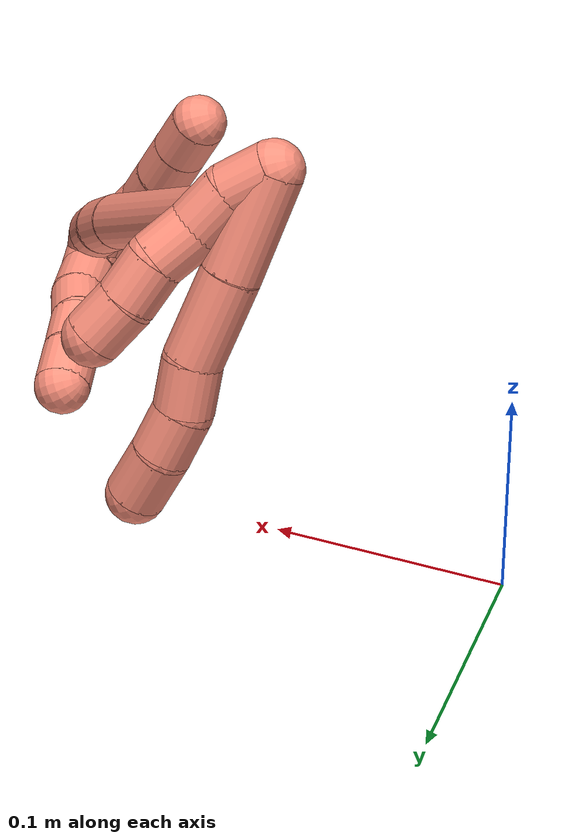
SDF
<sdf version="1.7">
 <world name="default">
  <model name="16">
   <static>0</static>
   <link name="16">
    <collision name="collision-cylinder-e_1_2_8">
     <pose>0.012216 -0.010831 0.015634 0.605865 0.57092 0.182941</pose>
     <geometry><cylinder><radius>0.0125</radius><length>0.045209</length></cylinder></geometry>
     <surface>
      <friction><ode><mu>1.16</mu><mu2>1.16</mu2><slip1>0</slip1><slip2>0</slip2></ode></friction>
      <contact><ode><kp>1e+06</kp><kd>1</kd><max_vel>0</max_vel><min_depth>0.001</min_depth></ode></contact>
     </surface>
    </collision>
    <visual name="visual-cylinder-e_1_2_8">
     <pose>0.012216 -0.010831 0.015634 0.605865 0.57092 0.182941</pose>
     <geometry><cylinder><radius>0.0125</radius><length>0.045209</length></cylinder></geometry>
     <material><ambient>1 0.576471 0.494118 1</ambient></material>
    </visual>
    <collision name="collision-cylinder-e_2_8_9">
     <pose>0.034078 -0.030901 0.045263 0.583504 0.522026 0.160093</pose>
     <geometry><cylinder><radius>0.0125</radius><length>0.038691</length></cylinder></geometry>
     <surface>
      <friction><ode><mu>1.16</mu><mu2>1.16</mu2><slip1>0</slip1><slip2>0</slip2></ode></friction>
      <contact><ode><kp>1e+06</kp><kd>1</kd><max_vel>0</max_vel><min_depth>0.001</min_depth></ode></contact>
     </surface>
    </collision>
    <visual name="visual-cylinder-e_2_8_9">
     <pose>0.034078 -0.030901 0.045263 0.583504 0.522026 0.160093</pose>
     <geometry><cylinder><radius>0.0125</radius><length>0.038691</length></cylinder></geometry>
     <material><ambient>1 0.576471 0.494118 1</ambient></material>
    </visual>
    <collision name="collision-cylinder-e_3_9_10">
     <pose>0.049313 -0.047003 0.065434 0.837935 0.544333 0.24731</pose>
     <geometry><cylinder><radius>0.0125</radius><length>0.021587</length></cylinder></geometry>
     <surface>
      <friction><ode><mu>1.16</mu><mu2>1.16</mu2><slip1>0</slip1><slip2>0</slip2></ode></friction>
      <contact><ode><kp>1e+06</kp><kd>1</kd><max_vel>0</max_vel><min_depth>0.001</min_depth></ode></contact>
     </surface>
    </collision>
    <visual name="visual-cylinder-e_3_9_10">
     <pose>0.049313 -0.047003 0.065434 0.837935 0.544333 0.24731</pose>
     <geometry><cylinder><radius>0.0125</radius><length>0.021587</length></cylinder></geometry>
     <material><ambient>1 0.576471 0.494118 1</ambient></material>
    </visual>
    <collision name="collision-cylinder-e_4_10_11">
     <pose>0.059265 -0.058863 0.079838 0.545886 0.425551 0.120808</pose>
     <geometry><cylinder><radius>0.0125</radius><length>0.021137</length></cylinder></geometry>
     <surface>
      <friction><ode><mu>1.16</mu><mu2>1.16</mu2><slip1>0</slip1><slip2>0</slip2></ode></friction>
      <contact><ode><kp>1e+06</kp><kd>1</kd><max_vel>0</max_vel><min_depth>0.001</min_depth></ode></contact>
     </surface>
    </collision>
    <visual name="visual-cylinder-e_4_10_11">
     <pose>0.059265 -0.058863 0.079838 0.545886 0.425551 0.120808</pose>
     <geometry><cylinder><radius>0.0125</radius><length>0.021137</length></cylinder></geometry>
     <material><ambient>1 0.576471 0.494118 1</ambient></material>
    </visual>
    <collision name="collision-cylinder-e_5_11_6">
     <pose>0.066605 -0.069589 0.097809 0.53151 0.257511 0.070454</pose>
     <geometry><cylinder><radius>0.0125</radius><length>0.023377</length></cylinder></geometry>
     <surface>
      <friction><ode><mu>1.16</mu><mu2>1.16</mu2><slip1>0</slip1><slip2>0</slip2></ode></friction>
      <contact><ode><kp>1e+06</kp><kd>1</kd><max_vel>0</max_vel><min_depth>0.001</min_depth></ode></contact>
     </surface>
    </collision>
    <visual name="visual-cylinder-e_5_11_6">
     <pose>0.066605 -0.069589 0.097809 0.53151 0.257511 0.070454</pose>
     <geometry><cylinder><radius>0.0125</radius><length>0.023377</length></cylinder></geometry>
     <material><ambient>1 0.576471 0.494118 1</ambient></material>
    </visual>
    <collision name="collision-cylinder-e_1_2_12">
     <pose>0.002186 0.000425 0.009749 -0.043569 0.22038 -0.004821</pose>
     <geometry><cylinder><radius>0.0125</radius><length>0.02</length></cylinder></geometry>
     <surface>
      <friction><ode><mu>1.16</mu><mu2>1.16</mu2><slip1>0</slip1><slip2>0</slip2></ode></friction>
      <contact><ode><kp>1e+06</kp><kd>1</kd><max_vel>0</max_vel><min_depth>0.001</min_depth></ode></contact>
     </surface>
    </collision>
    <visual name="visual-cylinder-e_1_2_12">
     <pose>0.002186 0.000425 0.009749 -0.043569 0.22038 -0.004821</pose>
     <geometry><cylinder><radius>0.0125</radius><length>0.02</length></cylinder></geometry>
     <material><ambient>1 0.576471 0.494118 1</ambient></material>
    </visual>
    <collision name="collision-cylinder-e_2_12_13">
     <pose>0.008754 -0.000961 0.028302 0.202858 0.45362 0.046968</pose>
     <geometry><cylinder><radius>0.0125</radius><length>0.02</length></cylinder></geometry>
     <surface>
      <friction><ode><mu>1.16</mu><mu2>1.16</mu2><slip1>0</slip1><slip2>0</slip2></ode></friction>
      <contact><ode><kp>1e+06</kp><kd>1</kd><max_vel>0</max_vel><min_depth>0.001</min_depth></ode></contact>
     </surface>
    </collision>
    <visual name="visual-cylinder-e_2_12_13">
     <pose>0.008754 -0.000961 0.028302 0.202858 0.45362 0.046968</pose>
     <geometry><cylinder><radius>0.0125</radius><length>0.02</length></cylinder></geometry>
     <material><ambient>1 0.576471 0.494118 1</ambient></material>
    </visual>
    <collision name="collision-cylinder-e_3_13_14">
     <pose>0.01833 -0.002577 0.04565 -0.022854 0.546061 -0.0064</pose>
     <geometry><cylinder><radius>0.0125</radius><length>0.02</length></cylinder></geometry>
     <surface>
      <friction><ode><mu>1.16</mu><mu2>1.16</mu2><slip1>0</slip1><slip2>0</slip2></ode></friction>
      <contact><ode><kp>1e+06</kp><kd>1</kd><max_vel>0</max_vel><min_depth>0.001</min_depth></ode></contact>
     </surface>
    </collision>
    <visual name="visual-cylinder-e_3_13_14">
     <pose>0.01833 -0.002577 0.04565 -0.022854 0.546061 -0.0064</pose>
     <geometry><cylinder><radius>0.0125</radius><length>0.02</length></cylinder></geometry>
     <material><ambient>1 0.576471 0.494118 1</ambient></material>
    </visual>
    <collision name="collision-cylinder-e_4_14_15">
     <pose>0.028787 -0.005135 0.062237 0.329858 0.554421 0.094646</pose>
     <geometry><cylinder><radius>0.0125</radius><length>0.02</length></cylinder></geometry>
     <surface>
      <friction><ode><mu>1.16</mu><mu2>1.16</mu2><slip1>0</slip1><slip2>0</slip2></ode></friction>
      <contact><ode><kp>1e+06</kp><kd>1</kd><max_vel>0</max_vel><min_depth>0.001</min_depth></ode></contact>
     </surface>
    </collision>
    <visual name="visual-cylinder-e_4_14_15">
     <pose>0.028787 -0.005135 0.062237 0.329858 0.554421 0.094646</pose>
     <geometry><cylinder><radius>0.0125</radius><length>0.02</length></cylinder></geometry>
     <material><ambient>1 0.576471 0.494118 1</ambient></material>
    </visual>
    <collision name="collision-cylinder-e_5_15_5">
     <pose>0.038257 -0.009892 0.07913 0.222548 0.433971 0.049256</pose>
     <geometry><cylinder><radius>0.0125</radius><length>0.02</length></cylinder></geometry>
     <surface>
      <friction><ode><mu>1.16</mu><mu2>1.16</mu2><slip1>0</slip1><slip2>0</slip2></ode></friction>
      <contact><ode><kp>1e+06</kp><kd>1</kd><max_vel>0</max_vel><min_depth>0.001</min_depth></ode></contact>
     </surface>
    </collision>
    <visual name="visual-cylinder-e_5_15_5">
     <pose>0.038257 -0.009892 0.07913 0.222548 0.433971 0.049256</pose>
     <geometry><cylinder><radius>0.0125</radius><length>0.02</length></cylinder></geometry>
     <material><ambient>1 0.576471 0.494118 1</ambient></material>
    </visual>
    <collision name="collision-cylinder-e_1_2_16">
     <pose>-0.020141 -0.023294 0.027379 0.704945 -0.51072 -0.191465</pose>
     <geometry><cylinder><radius>0.0125</radius><length>0.082411</length></cylinder></geometry>
     <surface>
      <friction><ode><mu>1.16</mu><mu2>1.16</mu2><slip1>0</slip1><slip2>0</slip2></ode></friction>
      <contact><ode><kp>1e+06</kp><kd>1</kd><max_vel>0</max_vel><min_depth>0.001</min_depth></ode></contact>
     </surface>
    </collision>
    <visual name="visual-cylinder-e_1_2_16">
     <pose>-0.020141 -0.023294 0.027379 0.704945 -0.51072 -0.191465</pose>
     <geometry><cylinder><radius>0.0125</radius><length>0.082411</length></cylinder></geometry>
     <material><ambient>1 0.576471 0.494118 1</ambient></material>
    </visual>
    <collision name="collision-cylinder-e_2_16_17">
     <pose>-0.058351 -0.061407 0.076404 0.600354 -0.60315 -0.191975</pose>
     <geometry><cylinder><radius>0.0125</radius><length>0.063706</length></cylinder></geometry>
     <surface>
      <friction><ode><mu>1.16</mu><mu2>1.16</mu2><slip1>0</slip1><slip2>0</slip2></ode></friction>
      <contact><ode><kp>1e+06</kp><kd>1</kd><max_vel>0</max_vel><min_depth>0.001</min_depth></ode></contact>
     </surface>
    </collision>
    <visual name="visual-cylinder-e_2_16_17">
     <pose>-0.058351 -0.061407 0.076404 0.600354 -0.60315 -0.191975</pose>
     <geometry><cylinder><radius>0.0125</radius><length>0.063706</length></cylinder></geometry>
     <material><ambient>1 0.576471 0.494118 1</ambient></material>
    </visual>
    <collision name="collision-cylinder-e_3_17_18">
     <pose>-0.099072 -0.089582 0.13411 0.354691 -0.532353 -0.097654</pose>
     <geometry><cylinder><radius>0.0125</radius><length>0.089261</length></cylinder></geometry>
     <surface>
      <friction><ode><mu>1.16</mu><mu2>1.16</mu2><slip1>0</slip1><slip2>0</slip2></ode></friction>
      <contact><ode><kp>1e+06</kp><kd>1</kd><max_vel>0</max_vel><min_depth>0.001</min_depth></ode></contact>
     </surface>
    </collision>
    <visual name="visual-cylinder-e_3_17_18">
     <pose>-0.099072 -0.089582 0.13411 0.354691 -0.532353 -0.097654</pose>
     <geometry><cylinder><radius>0.0125</radius><length>0.089261</length></cylinder></geometry>
     <material><ambient>1 0.576471 0.494118 1</ambient></material>
    </visual>
    <collision name="collision-cylinder-e_4_18_19">
     <pose>-0.126891 -0.107208 0.178457 0.475868 -0.506049 -0.125255</pose>
     <geometry><cylinder><radius>0.0125</radius><length>0.021315</length></cylinder></geometry>
     <surface>
      <friction><ode><mu>1.16</mu><mu2>1.16</mu2><slip1>0</slip1><slip2>0</slip2></ode></friction>
      <contact><ode><kp>1e+06</kp><kd>1</kd><max_vel>0</max_vel><min_depth>0.001</min_depth></ode></contact>
     </surface>
    </collision>
    <visual name="visual-cylinder-e_4_18_19">
     <pose>-0.126891 -0.107208 0.178457 0.475868 -0.506049 -0.125255</pose>
     <geometry><cylinder><radius>0.0125</radius><length>0.021315</length></cylinder></geometry>
     <material><ambient>1 0.576471 0.494118 1</ambient></material>
    </visual>
    <collision name="collision-cylinder-e_5_19_20">
     <pose>-0.137755 -0.117213 0.193846 0.679274 -0.55798 -0.201743</pose>
     <geometry><cylinder><radius>0.0125</radius><length>0.021522</length></cylinder></geometry>
     <surface>
      <friction><ode><mu>1.16</mu><mu2>1.16</mu2><slip1>0</slip1><slip2>0</slip2></ode></friction>
      <contact><ode><kp>1e+06</kp><kd>1</kd><max_vel>0</max_vel><min_depth>0.001</min_depth></ode></contact>
     </surface>
    </collision>
    <visual name="visual-cylinder-e_5_19_20">
     <pose>-0.137755 -0.117213 0.193846 0.679274 -0.55798 -0.201743</pose>
     <geometry><cylinder><radius>0.0125</radius><length>0.021522</length></cylinder></geometry>
     <material><ambient>1 0.576471 0.494118 1</ambient></material>
    </visual>
    <collision name="collision-cylinder-e_6_20_1">
     <pose>-0.146514 -0.13079 0.20786 0.848349 -0.284879 -0.129345</pose>
     <geometry><cylinder><radius>0.0125</radius><length>0.021784</length></cylinder></geometry>
     <surface>
      <friction><ode><mu>1.16</mu><mu2>1.16</mu2><slip1>0</slip1><slip2>0</slip2></ode></friction>
      <contact><ode><kp>1e+06</kp><kd>1</kd><max_vel>0</max_vel><min_depth>0.001</min_depth></ode></contact>
     </surface>
    </collision>
    <visual name="visual-cylinder-e_6_20_1">
     <pose>-0.146514 -0.13079 0.20786 0.848349 -0.284879 -0.129345</pose>
     <geometry><cylinder><radius>0.0125</radius><length>0.021784</length></cylinder></geometry>
     <material><ambient>1 0.576471 0.494118 1</ambient></material>
    </visual>
    <collision name="collision-cylinder-e_1_1_21">
     <pose>-0.151029 -0.135713 0.205319 -2.8421 -0.145976 0.902531</pose>
     <geometry><cylinder><radius>0.0125</radius><length>0.02</length></cylinder></geometry>
     <surface>
      <friction><ode><mu>1.16</mu><mu2>1.16</mu2><slip1>0</slip1><slip2>0</slip2></ode></friction>
      <contact><ode><kp>1e+06</kp><kd>1</kd><max_vel>0</max_vel><min_depth>0.001</min_depth></ode></contact>
     </surface>
    </collision>
    <visual name="visual-cylinder-e_1_1_21">
     <pose>-0.151029 -0.135713 0.205319 -2.8421 -0.145976 0.902531</pose>
     <geometry><cylinder><radius>0.0125</radius><length>0.02</length></cylinder></geometry>
     <material><ambient>1 0.576471 0.494118 1</ambient></material>
    </visual>
    <collision name="collision-cylinder-e_2_21_22">
     <pose>-0.154198 -0.129657 0.186526 -2.81757 -0.172207 0.971773</pose>
     <geometry><cylinder><radius>0.0125</radius><length>0.02</length></cylinder></geometry>
     <surface>
      <friction><ode><mu>1.16</mu><mu2>1.16</mu2><slip1>0</slip1><slip2>0</slip2></ode></friction>
      <contact><ode><kp>1e+06</kp><kd>1</kd><max_vel>0</max_vel><min_depth>0.001</min_depth></ode></contact>
     </surface>
    </collision>
    <visual name="visual-cylinder-e_2_21_22">
     <pose>-0.154198 -0.129657 0.186526 -2.81757 -0.172207 0.971773</pose>
     <geometry><cylinder><radius>0.0125</radius><length>0.02</length></cylinder></geometry>
     <material><ambient>1 0.576471 0.494118 1</ambient></material>
    </visual>
    <collision name="collision-cylinder-e_3_22_23">
     <pose>-0.155414 -0.121103 0.168796 -2.56825 0.049701 -0.168233</pose>
     <geometry><cylinder><radius>0.0125</radius><length>0.02</length></cylinder></geometry>
     <surface>
      <friction><ode><mu>1.16</mu><mu2>1.16</mu2><slip1>0</slip1><slip2>0</slip2></ode></friction>
      <contact><ode><kp>1e+06</kp><kd>1</kd><max_vel>0</max_vel><min_depth>0.001</min_depth></ode></contact>
     </surface>
    </collision>
    <visual name="visual-cylinder-e_3_22_23">
     <pose>-0.155414 -0.121103 0.168796 -2.56825 0.049701 -0.168233</pose>
     <geometry><cylinder><radius>0.0125</radius><length>0.02</length></cylinder></geometry>
     <material><ambient>1 0.576471 0.494118 1</ambient></material>
    </visual>
    <collision name="collision-cylinder-e_4_23_24">
     <pose>-0.155161 -0.110445 0.151892 -2.58986 -0.024377 0.086062</pose>
     <geometry><cylinder><radius>0.0125</radius><length>0.02</length></cylinder></geometry>
     <surface>
      <friction><ode><mu>1.16</mu><mu2>1.16</mu2><slip1>0</slip1><slip2>0</slip2></ode></friction>
      <contact><ode><kp>1e+06</kp><kd>1</kd><max_vel>0</max_vel><min_depth>0.001</min_depth></ode></contact>
     </surface>
    </collision>
    <visual name="visual-cylinder-e_4_23_24">
     <pose>-0.155161 -0.110445 0.151892 -2.58986 -0.024377 0.086062</pose>
     <geometry><cylinder><radius>0.0125</radius><length>0.02</length></cylinder></geometry>
     <material><ambient>1 0.576471 0.494118 1</ambient></material>
    </visual>
    <collision name="collision-cylinder-e_5_24_4">
     <pose>-0.155792 -0.100001 0.134848 -2.5939 -0.038672 0.137471</pose>
     <geometry><cylinder><radius>0.0125</radius><length>0.02</length></cylinder></geometry>
     <surface>
      <friction><ode><mu>1.16</mu><mu2>1.16</mu2><slip1>0</slip1><slip2>0</slip2></ode></friction>
      <contact><ode><kp>1e+06</kp><kd>1</kd><max_vel>0</max_vel><min_depth>0.001</min_depth></ode></contact>
     </surface>
    </collision>
    <visual name="visual-cylinder-e_5_24_4">
     <pose>-0.155792 -0.100001 0.134848 -2.5939 -0.038672 0.137471</pose>
     <geometry><cylinder><radius>0.0125</radius><length>0.02</length></cylinder></geometry>
     <material><ambient>1 0.576471 0.494118 1</ambient></material>
    </visual>
    <collision name="collision-cylinder-e_1_1_25">
     <pose>-0.14009 -0.135991 0.213025 -2.15535 1.24858 -1.85976</pose>
     <geometry><cylinder><radius>0.0125</radius><length>0.02</length></cylinder></geometry>
     <surface>
      <friction><ode><mu>1.16</mu><mu2>1.16</mu2><slip1>0</slip1><slip2>0</slip2></ode></friction>
      <contact><ode><kp>1e+06</kp><kd>1</kd><max_vel>0</max_vel><min_depth>0.001</min_depth></ode></contact>
     </surface>
    </collision>
    <visual name="visual-cylinder-e_1_1_25">
     <pose>-0.14009 -0.135991 0.213025 -2.15535 1.24858 -1.85976</pose>
     <geometry><cylinder><radius>0.0125</radius><length>0.02</length></cylinder></geometry>
     <material><ambient>1 0.576471 0.494118 1</ambient></material>
    </visual>
    <collision name="collision-cylinder-e_2_25_26">
     <pose>-0.121067 -0.130594 0.210075 -1.98214 1.26535 -1.6837</pose>
     <geometry><cylinder><radius>0.0125</radius><length>0.02</length></cylinder></geometry>
     <surface>
      <friction><ode><mu>1.16</mu><mu2>1.16</mu2><slip1>0</slip1><slip2>0</slip2></ode></friction>
      <contact><ode><kp>1e+06</kp><kd>1</kd><max_vel>0</max_vel><min_depth>0.001</min_depth></ode></contact>
     </surface>
    </collision>
    <visual name="visual-cylinder-e_2_25_26">
     <pose>-0.121067 -0.130594 0.210075 -1.98214 1.26535 -1.6837</pose>
     <geometry><cylinder><radius>0.0125</radius><length>0.02</length></cylinder></geometry>
     <material><ambient>1 0.576471 0.494118 1</ambient></material>
    </visual>
    <collision name="collision-cylinder-e_3_26_27">
     <pose>-0.102165 -0.12615 0.205797 -2.63956 1.2124 -2.43305</pose>
     <geometry><cylinder><radius>0.0125</radius><length>0.02</length></cylinder></geometry>
     <surface>
      <friction><ode><mu>1.16</mu><mu2>1.16</mu2><slip1>0</slip1><slip2>0</slip2></ode></friction>
      <contact><ode><kp>1e+06</kp><kd>1</kd><max_vel>0</max_vel><min_depth>0.001</min_depth></ode></contact>
     </surface>
    </collision>
    <visual name="visual-cylinder-e_3_26_27">
     <pose>-0.102165 -0.12615 0.205797 -2.63956 1.2124 -2.43305</pose>
     <geometry><cylinder><radius>0.0125</radius><length>0.02</length></cylinder></geometry>
     <material><ambient>1 0.576471 0.494118 1</ambient></material>
    </visual>
    <collision name="collision-cylinder-e_4_27_28">
     <pose>-0.082859 -0.123504 0.202217 -2.05624 1.4623 -1.95776</pose>
     <geometry><cylinder><radius>0.0125</radius><length>0.02</length></cylinder></geometry>
     <surface>
      <friction><ode><mu>1.16</mu><mu2>1.16</mu2><slip1>0</slip1><slip2>0</slip2></ode></friction>
      <contact><ode><kp>1e+06</kp><kd>1</kd><max_vel>0</max_vel><min_depth>0.001</min_depth></ode></contact>
     </surface>
    </collision>
    <visual name="visual-cylinder-e_4_27_28">
     <pose>-0.082859 -0.123504 0.202217 -2.05624 1.4623 -1.95776</pose>
     <geometry><cylinder><radius>0.0125</radius><length>0.02</length></cylinder></geometry>
     <material><ambient>1 0.576471 0.494118 1</ambient></material>
    </visual>
    <collision name="collision-cylinder-e_5_28_3">
     <pose>-0.062931 -0.122329 0.202169 -0.443722 1.52016 -0.422466</pose>
     <geometry><cylinder><radius>0.0125</radius><length>0.02</length></cylinder></geometry>
     <surface>
      <friction><ode><mu>1.16</mu><mu2>1.16</mu2><slip1>0</slip1><slip2>0</slip2></ode></friction>
      <contact><ode><kp>1e+06</kp><kd>1</kd><max_vel>0</max_vel><min_depth>0.001</min_depth></ode></contact>
     </surface>
    </collision>
    <visual name="visual-cylinder-e_5_28_3">
     <pose>-0.062931 -0.122329 0.202169 -0.443722 1.52016 -0.422466</pose>
     <geometry><cylinder><radius>0.0125</radius><length>0.02</length></cylinder></geometry>
     <material><ambient>1 0.576471 0.494118 1</ambient></material>
    </visual>
    <collision name="collision-sphere-3">
     <pose>-0.052944 -0.122112 0.202626 0 -0 0</pose>
     <geometry><sphere><radius>0.0125</radius></sphere></geometry>
     <surface>
      <friction><ode><mu>1.16</mu><mu2>1.16</mu2><slip1>0</slip1><slip2>0</slip2></ode></friction>
      <contact><ode><kp>1e+06</kp><kd>1</kd><max_vel>0</max_vel><min_depth>0.001</min_depth></ode></contact>
     </surface>
    </collision>
    <visual name="visual-sphere-3">
     <pose>-0.052944 -0.122112 0.202626 0 -0 0</pose>
     <geometry><sphere><radius>0.0125</radius></sphere></geometry>
     <material><ambient>1 0.576471 0.494118 1</ambient></material>
    </visual>
    <collision name="collision-sphere-28">
     <pose>-0.072918 -0.122546 0.201712 0 -0 0</pose>
     <geometry><sphere><radius>0.0125</radius></sphere></geometry>
     <surface>
      <friction><ode><mu>1.16</mu><mu2>1.16</mu2><slip1>0</slip1><slip2>0</slip2></ode></friction>
      <contact><ode><kp>1e+06</kp><kd>1</kd><max_vel>0</max_vel><min_depth>0.001</min_depth></ode></contact>
     </surface>
    </collision>
    <visual name="visual-sphere-28">
     <pose>-0.072918 -0.122546 0.201712 0 -0 0</pose>
     <geometry><sphere><radius>0.0125</radius></sphere></geometry>
     <material><ambient>1 0.576471 0.494118 1</ambient></material>
    </visual>
    <collision name="collision-sphere-27">
     <pose>-0.092801 -0.124462 0.202723 0 -0 0</pose>
     <geometry><sphere><radius>0.0125</radius></sphere></geometry>
     <surface>
      <friction><ode><mu>1.16</mu><mu2>1.16</mu2><slip1>0</slip1><slip2>0</slip2></ode></friction>
      <contact><ode><kp>1e+06</kp><kd>1</kd><max_vel>0</max_vel><min_depth>0.001</min_depth></ode></contact>
     </surface>
    </collision>
    <visual name="visual-sphere-27">
     <pose>-0.092801 -0.124462 0.202723 0 -0 0</pose>
     <geometry><sphere><radius>0.0125</radius></sphere></geometry>
     <material><ambient>1 0.576471 0.494118 1</ambient></material>
    </visual>
    <collision name="collision-sphere-26">
     <pose>-0.11153 -0.127838 0.208872 0 -0 0</pose>
     <geometry><sphere><radius>0.0125</radius></sphere></geometry>
     <surface>
      <friction><ode><mu>1.16</mu><mu2>1.16</mu2><slip1>0</slip1><slip2>0</slip2></ode></friction>
      <contact><ode><kp>1e+06</kp><kd>1</kd><max_vel>0</max_vel><min_depth>0.001</min_depth></ode></contact>
     </surface>
    </collision>
    <visual name="visual-sphere-26">
     <pose>-0.11153 -0.127838 0.208872 0 -0 0</pose>
     <geometry><sphere><radius>0.0125</radius></sphere></geometry>
     <material><ambient>1 0.576471 0.494118 1</ambient></material>
    </visual>
    <collision name="collision-sphere-25">
     <pose>-0.130604 -0.13335 0.211277 0 -0 0</pose>
     <geometry><sphere><radius>0.0125</radius></sphere></geometry>
     <surface>
      <friction><ode><mu>1.16</mu><mu2>1.16</mu2><slip1>0</slip1><slip2>0</slip2></ode></friction>
      <contact><ode><kp>1e+06</kp><kd>1</kd><max_vel>0</max_vel><min_depth>0.001</min_depth></ode></contact>
     </surface>
    </collision>
    <visual name="visual-sphere-25">
     <pose>-0.130604 -0.13335 0.211277 0 -0 0</pose>
     <geometry><sphere><radius>0.0125</radius></sphere></geometry>
     <material><ambient>1 0.576471 0.494118 1</ambient></material>
    </visual>
    <collision name="collision-sphere-4">
     <pose>-0.156178 -0.094798 0.126317 0 -0 0</pose>
     <geometry><sphere><radius>0.0125</radius></sphere></geometry>
     <surface>
      <friction><ode><mu>1.16</mu><mu2>1.16</mu2><slip1>0</slip1><slip2>0</slip2></ode></friction>
      <contact><ode><kp>1e+06</kp><kd>1</kd><max_vel>0</max_vel><min_depth>0.001</min_depth></ode></contact>
     </surface>
    </collision>
    <visual name="visual-sphere-4">
     <pose>-0.156178 -0.094798 0.126317 0 -0 0</pose>
     <geometry><sphere><radius>0.0125</radius></sphere></geometry>
     <material><ambient>1 0.576471 0.494118 1</ambient></material>
    </visual>
    <collision name="collision-sphere-24">
     <pose>-0.155405 -0.105205 0.143378 0 -0 0</pose>
     <geometry><sphere><radius>0.0125</radius></sphere></geometry>
     <surface>
      <friction><ode><mu>1.16</mu><mu2>1.16</mu2><slip1>0</slip1><slip2>0</slip2></ode></friction>
      <contact><ode><kp>1e+06</kp><kd>1</kd><max_vel>0</max_vel><min_depth>0.001</min_depth></ode></contact>
     </surface>
    </collision>
    <visual name="visual-sphere-24">
     <pose>-0.155405 -0.105205 0.143378 0 -0 0</pose>
     <geometry><sphere><radius>0.0125</radius></sphere></geometry>
     <material><ambient>1 0.576471 0.494118 1</ambient></material>
    </visual>
    <collision name="collision-sphere-23">
     <pose>-0.154918 -0.115685 0.160406 0 -0 0</pose>
     <geometry><sphere><radius>0.0125</radius></sphere></geometry>
     <surface>
      <friction><ode><mu>1.16</mu><mu2>1.16</mu2><slip1>0</slip1><slip2>0</slip2></ode></friction>
      <contact><ode><kp>1e+06</kp><kd>1</kd><max_vel>0</max_vel><min_depth>0.001</min_depth></ode></contact>
     </surface>
    </collision>
    <visual name="visual-sphere-23">
     <pose>-0.154918 -0.115685 0.160406 0 -0 0</pose>
     <geometry><sphere><radius>0.0125</radius></sphere></geometry>
     <material><ambient>1 0.576471 0.494118 1</ambient></material>
    </visual>
    <collision name="collision-sphere-22">
     <pose>-0.155911 -0.12652 0.177187 0 -0 0</pose>
     <geometry><sphere><radius>0.0125</radius></sphere></geometry>
     <surface>
      <friction><ode><mu>1.16</mu><mu2>1.16</mu2><slip1>0</slip1><slip2>0</slip2></ode></friction>
      <contact><ode><kp>1e+06</kp><kd>1</kd><max_vel>0</max_vel><min_depth>0.001</min_depth></ode></contact>
     </surface>
    </collision>
    <visual name="visual-sphere-22">
     <pose>-0.155911 -0.12652 0.177187 0 -0 0</pose>
     <geometry><sphere><radius>0.0125</radius></sphere></geometry>
     <material><ambient>1 0.576471 0.494118 1</ambient></material>
    </visual>
    <collision name="collision-sphere-21">
     <pose>-0.152484 -0.132794 0.195866 0 -0 0</pose>
     <geometry><sphere><radius>0.0125</radius></sphere></geometry>
     <surface>
      <friction><ode><mu>1.16</mu><mu2>1.16</mu2><slip1>0</slip1><slip2>0</slip2></ode></friction>
      <contact><ode><kp>1e+06</kp><kd>1</kd><max_vel>0</max_vel><min_depth>0.001</min_depth></ode></contact>
     </surface>
    </collision>
    <visual name="visual-sphere-21">
     <pose>-0.152484 -0.132794 0.195866 0 -0 0</pose>
     <geometry><sphere><radius>0.0125</radius></sphere></geometry>
     <material><ambient>1 0.576471 0.494118 1</ambient></material>
    </visual>
    <collision name="collision-sphere-1">
     <pose>-0.149575 -0.138632 0.214772 0 -0 0</pose>
     <geometry><sphere><radius>0.0125</radius></sphere></geometry>
     <surface>
      <friction><ode><mu>1.16</mu><mu2>1.16</mu2><slip1>0</slip1><slip2>0</slip2></ode></friction>
      <contact><ode><kp>1e+06</kp><kd>1</kd><max_vel>0</max_vel><min_depth>0.001</min_depth></ode></contact>
     </surface>
    </collision>
    <visual name="visual-sphere-1">
     <pose>-0.149575 -0.138632 0.214772 0 -0 0</pose>
     <geometry><sphere><radius>0.0125</radius></sphere></geometry>
     <material><ambient>1 0.576471 0.494118 1</ambient></material>
    </visual>
    <collision name="collision-sphere-6">
     <pose>0.069582 -0.075318 0.107552 0 -0 0</pose>
     <geometry><sphere><radius>0.0125</radius></sphere></geometry>
     <surface>
      <friction><ode><mu>1.16</mu><mu2>1.16</mu2><slip1>0</slip1><slip2>0</slip2></ode></friction>
      <contact><ode><kp>1e+06</kp><kd>1</kd><max_vel>0</max_vel><min_depth>0.001</min_depth></ode></contact>
     </surface>
    </collision>
    <visual name="visual-sphere-6">
     <pose>0.069582 -0.075318 0.107552 0 -0 0</pose>
     <geometry><sphere><radius>0.0125</radius></sphere></geometry>
     <material><ambient>1 0.576471 0.494118 1</ambient></material>
    </visual>
    <collision name="collision-sphere-11">
     <pose>0.063628 -0.063861 0.088065 0 -0 0</pose>
     <geometry><sphere><radius>0.0125</radius></sphere></geometry>
     <surface>
      <friction><ode><mu>1.16</mu><mu2>1.16</mu2><slip1>0</slip1><slip2>0</slip2></ode></friction>
      <contact><ode><kp>1e+06</kp><kd>1</kd><max_vel>0</max_vel><min_depth>0.001</min_depth></ode></contact>
     </surface>
    </collision>
    <visual name="visual-sphere-11">
     <pose>0.063628 -0.063861 0.088065 0 -0 0</pose>
     <geometry><sphere><radius>0.0125</radius></sphere></geometry>
     <material><ambient>1 0.576471 0.494118 1</ambient></material>
    </visual>
    <collision name="collision-sphere-10">
     <pose>0.054903 -0.053866 0.071611 0 -0 0</pose>
     <geometry><sphere><radius>0.0125</radius></sphere></geometry>
     <surface>
      <friction><ode><mu>1.16</mu><mu2>1.16</mu2><slip1>0</slip1><slip2>0</slip2></ode></friction>
      <contact><ode><kp>1e+06</kp><kd>1</kd><max_vel>0</max_vel><min_depth>0.001</min_depth></ode></contact>
     </surface>
    </collision>
    <visual name="visual-sphere-10">
     <pose>0.054903 -0.053866 0.071611 0 -0 0</pose>
     <geometry><sphere><radius>0.0125</radius></sphere></geometry>
     <material><ambient>1 0.576471 0.494118 1</ambient></material>
    </visual>
    <collision name="collision-sphere-9">
     <pose>0.043724 -0.04014 0.059257 0 -0 0</pose>
     <geometry><sphere><radius>0.0125</radius></sphere></geometry>
     <surface>
      <friction><ode><mu>1.16</mu><mu2>1.16</mu2><slip1>0</slip1><slip2>0</slip2></ode></friction>
      <contact><ode><kp>1e+06</kp><kd>1</kd><max_vel>0</max_vel><min_depth>0.001</min_depth></ode></contact>
     </surface>
    </collision>
    <visual name="visual-sphere-9">
     <pose>0.043724 -0.04014 0.059257 0 -0 0</pose>
     <geometry><sphere><radius>0.0125</radius></sphere></geometry>
     <material><ambient>1 0.576471 0.494118 1</ambient></material>
    </visual>
    <collision name="collision-sphere-2">
     <geometry><sphere><radius>0.0125</radius></sphere></geometry>
     <surface>
      <friction><ode><mu>1.16</mu><mu2>1.16</mu2><slip1>0</slip1><slip2>0</slip2></ode></friction>
      <contact><ode><kp>1e+06</kp><kd>1</kd><max_vel>0</max_vel><min_depth>0.001</min_depth></ode></contact>
     </surface>
    </collision>
    <visual name="visual-sphere-2">
     <geometry><sphere><radius>0.0125</radius></sphere></geometry>
     <material><ambient>1 0.576471 0.494118 1</ambient></material>
    </visual>
    <collision name="collision-sphere-19">
     <pose>-0.132057 -0.111478 0.186743 0 -0 0</pose>
     <geometry><sphere><radius>0.0125</radius></sphere></geometry>
     <surface>
      <friction><ode><mu>1.16</mu><mu2>1.16</mu2><slip1>0</slip1><slip2>0</slip2></ode></friction>
      <contact><ode><kp>1e+06</kp><kd>1</kd><max_vel>0</max_vel><min_depth>0.001</min_depth></ode></contact>
     </surface>
    </collision>
    <visual name="visual-sphere-19">
     <pose>-0.132057 -0.111478 0.186743 0 -0 0</pose>
     <geometry><sphere><radius>0.0125</radius></sphere></geometry>
     <material><ambient>1 0.576471 0.494118 1</ambient></material>
    </visual>
    <collision name="collision-sphere-8">
     <pose>0.024431 -0.021662 0.031268 0 -0 0</pose>
     <geometry><sphere><radius>0.0125</radius></sphere></geometry>
     <surface>
      <friction><ode><mu>1.16</mu><mu2>1.16</mu2><slip1>0</slip1><slip2>0</slip2></ode></friction>
      <contact><ode><kp>1e+06</kp><kd>1</kd><max_vel>0</max_vel><min_depth>0.001</min_depth></ode></contact>
     </surface>
    </collision>
    <visual name="visual-sphere-8">
     <pose>0.024431 -0.021662 0.031268 0 -0 0</pose>
     <geometry><sphere><radius>0.0125</radius></sphere></geometry>
     <material><ambient>1 0.576471 0.494118 1</ambient></material>
    </visual>
    <collision name="collision-sphere-12">
     <pose>0.004372 0.00085 0.019498 0 -0 0</pose>
     <geometry><sphere><radius>0.0125</radius></sphere></geometry>
     <surface>
      <friction><ode><mu>1.16</mu><mu2>1.16</mu2><slip1>0</slip1><slip2>0</slip2></ode></friction>
      <contact><ode><kp>1e+06</kp><kd>1</kd><max_vel>0</max_vel><min_depth>0.001</min_depth></ode></contact>
     </surface>
    </collision>
    <visual name="visual-sphere-12">
     <pose>0.004372 0.00085 0.019498 0 -0 0</pose>
     <geometry><sphere><radius>0.0125</radius></sphere></geometry>
     <material><ambient>1 0.576471 0.494118 1</ambient></material>
    </visual>
    <collision name="collision-sphere-13">
     <pose>0.013136 -0.002772 0.037106 0 -0 0</pose>
     <geometry><sphere><radius>0.0125</radius></sphere></geometry>
     <surface>
      <friction><ode><mu>1.16</mu><mu2>1.16</mu2><slip1>0</slip1><slip2>0</slip2></ode></friction>
      <contact><ode><kp>1e+06</kp><kd>1</kd><max_vel>0</max_vel><min_depth>0.001</min_depth></ode></contact>
     </surface>
    </collision>
    <visual name="visual-sphere-13">
     <pose>0.013136 -0.002772 0.037106 0 -0 0</pose>
     <geometry><sphere><radius>0.0125</radius></sphere></geometry>
     <material><ambient>1 0.576471 0.494118 1</ambient></material>
    </visual>
    <collision name="collision-sphere-14">
     <pose>0.023523 -0.002381 0.054194 0 -0 0</pose>
     <geometry><sphere><radius>0.0125</radius></sphere></geometry>
     <surface>
      <friction><ode><mu>1.16</mu><mu2>1.16</mu2><slip1>0</slip1><slip2>0</slip2></ode></friction>
      <contact><ode><kp>1e+06</kp><kd>1</kd><max_vel>0</max_vel><min_depth>0.001</min_depth></ode></contact>
     </surface>
    </collision>
    <visual name="visual-sphere-14">
     <pose>0.023523 -0.002381 0.054194 0 -0 0</pose>
     <geometry><sphere><radius>0.0125</radius></sphere></geometry>
     <material><ambient>1 0.576471 0.494118 1</ambient></material>
    </visual>
    <collision name="collision-sphere-15">
     <pose>0.034052 -0.007889 0.070281 0 -0 0</pose>
     <geometry><sphere><radius>0.0125</radius></sphere></geometry>
     <surface>
      <friction><ode><mu>1.16</mu><mu2>1.16</mu2><slip1>0</slip1><slip2>0</slip2></ode></friction>
      <contact><ode><kp>1e+06</kp><kd>1</kd><max_vel>0</max_vel><min_depth>0.001</min_depth></ode></contact>
     </surface>
    </collision>
    <visual name="visual-sphere-15">
     <pose>0.034052 -0.007889 0.070281 0 -0 0</pose>
     <geometry><sphere><radius>0.0125</radius></sphere></geometry>
     <material><ambient>1 0.576471 0.494118 1</ambient></material>
    </visual>
    <collision name="collision-sphere-5">
     <pose>0.042462 -0.011894 0.087979 0 -0 0</pose>
     <geometry><sphere><radius>0.0125</radius></sphere></geometry>
     <surface>
      <friction><ode><mu>1.16</mu><mu2>1.16</mu2><slip1>0</slip1><slip2>0</slip2></ode></friction>
      <contact><ode><kp>1e+06</kp><kd>1</kd><max_vel>0</max_vel><min_depth>0.001</min_depth></ode></contact>
     </surface>
    </collision>
    <visual name="visual-sphere-5">
     <pose>0.042462 -0.011894 0.087979 0 -0 0</pose>
     <geometry><sphere><radius>0.0125</radius></sphere></geometry>
     <material><ambient>1 0.576471 0.494118 1</ambient></material>
    </visual>
    <collision name="collision-sphere-16">
     <pose>-0.040283 -0.046587 0.054758 0 -0 0</pose>
     <geometry><sphere><radius>0.0125</radius></sphere></geometry>
     <surface>
      <friction><ode><mu>1.16</mu><mu2>1.16</mu2><slip1>0</slip1><slip2>0</slip2></ode></friction>
      <contact><ode><kp>1e+06</kp><kd>1</kd><max_vel>0</max_vel><min_depth>0.001</min_depth></ode></contact>
     </surface>
    </collision>
    <visual name="visual-sphere-16">
     <pose>-0.040283 -0.046587 0.054758 0 -0 0</pose>
     <geometry><sphere><radius>0.0125</radius></sphere></geometry>
     <material><ambient>1 0.576471 0.494118 1</ambient></material>
    </visual>
    <collision name="collision-sphere-17">
     <pose>-0.07642 -0.076227 0.09805 0 -0 0</pose>
     <geometry><sphere><radius>0.0125</radius></sphere></geometry>
     <surface>
      <friction><ode><mu>1.16</mu><mu2>1.16</mu2><slip1>0</slip1><slip2>0</slip2></ode></friction>
      <contact><ode><kp>1e+06</kp><kd>1</kd><max_vel>0</max_vel><min_depth>0.001</min_depth></ode></contact>
     </surface>
    </collision>
    <visual name="visual-sphere-17">
     <pose>-0.07642 -0.076227 0.09805 0 -0 0</pose>
     <geometry><sphere><radius>0.0125</radius></sphere></geometry>
     <material><ambient>1 0.576471 0.494118 1</ambient></material>
    </visual>
    <collision name="collision-sphere-18">
     <pose>-0.121725 -0.102937 0.170171 0 -0 0</pose>
     <geometry><sphere><radius>0.0125</radius></sphere></geometry>
     <surface>
      <friction><ode><mu>1.16</mu><mu2>1.16</mu2><slip1>0</slip1><slip2>0</slip2></ode></friction>
      <contact><ode><kp>1e+06</kp><kd>1</kd><max_vel>0</max_vel><min_depth>0.001</min_depth></ode></contact>
     </surface>
    </collision>
    <visual name="visual-sphere-18">
     <pose>-0.121725 -0.102937 0.170171 0 -0 0</pose>
     <geometry><sphere><radius>0.0125</radius></sphere></geometry>
     <material><ambient>1 0.576471 0.494118 1</ambient></material>
    </visual>
    <collision name="collision-sphere-20">
     <pose>-0.143453 -0.122948 0.200948 0 -0 0</pose>
     <geometry><sphere><radius>0.0125</radius></sphere></geometry>
     <surface>
      <friction><ode><mu>1.16</mu><mu2>1.16</mu2><slip1>0</slip1><slip2>0</slip2></ode></friction>
      <contact><ode><kp>1e+06</kp><kd>1</kd><max_vel>0</max_vel><min_depth>0.001</min_depth></ode></contact>
     </surface>
    </collision>
    <visual name="visual-sphere-20">
     <pose>-0.143453 -0.122948 0.200948 0 -0 0</pose>
     <geometry><sphere><radius>0.0125</radius></sphere></geometry>
     <material><ambient>1 0.576471 0.494118 1</ambient></material>
    </visual>
    <inertial>
     <pose>-0.0547 -0.069504 0.108744 0 -0 0</pose>
     <mass>0.75</mass>
     <inertia>
      <ixx>0.000141</ixx>
      <ixy>0</ixy>
      <ixz>0</ixz>
      <iyy>0.000125</iyy>
      <iyz>0</iyz>
      <izz>0.000144</izz>
     </inertia>
    </inertial>
   </link>
   <pose>0.093027 0.025503 0.209385 2.14121 0.205248 1.80448</pose>
  </model>
 </world>
</sdf>
